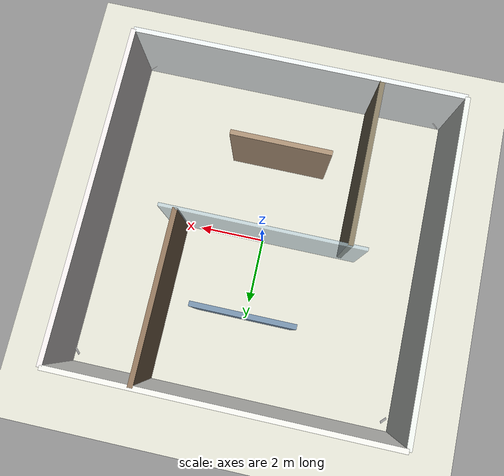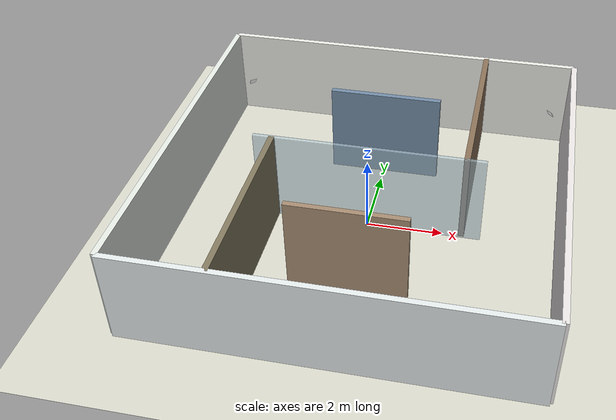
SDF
<?xml version="1.0"?>
<sdf version="1.7">
  <world name="office_corridor_world">

    <!-- Physics settings -->
    <physics name="default_physics" type="ode">
      <max_step_size>0.001</max_step_size>
      <real_time_factor>1.0</real_time_factor>
      <real_time_update_rate>1000</real_time_update_rate>
    </physics>

    <!-- Essential Gazebo Plugins -->
    <plugin filename="gz-sim-physics-system" name="gz::sim::systems::Physics"></plugin>
    <plugin filename="gz-sim-sensors-system" name="gz::sim::systems::Sensors">
      <render_engine>ogre2</render_engine>
    </plugin>
    <plugin filename="gz-sim-scene-broadcaster-system" name="gz::sim::systems::SceneBroadcaster"></plugin>
    <plugin filename="gz-sim-user-commands-system" name="gz::sim::systems::UserCommands"></plugin>

    <!-- Scene settings - office environment -->
    <scene>
      <ambient>0.7 0.7 0.7 1.0</ambient>
      <background>0.5 0.5 0.6 1.0</background>
      <shadows>true</shadows>
    </scene>

    <!-- Office lighting - softer and diffused -->
    <light type="directional" name="sun">
      <cast_shadows>true</cast_shadows>
      <pose>2 2 12 0 0 0</pose>
      <diffuse>0.85 0.85 0.9 1</diffuse>
      <specular>0.25 0.25 0.25 1</specular>
      <direction>-0.2 -0.2 -0.95</direction>
    </light>

    <!-- Additional ambient ceiling lights -->
    <light type="point" name="ceiling_light_1">
      <pose>3 2 2.8 0 0 0</pose>
      <diffuse>0.8 0.8 0.75 1</diffuse>
      <specular>0.15 0.15 0.15 1</specular>
      <attenuation>
        <range>12</range>
        <linear>0.08</linear>
        <quadratic>0.005</quadratic>
      </attenuation>
    </light>

    <light type="point" name="ceiling_light_2">
      <pose>-3 -2 2.8 0 0 0</pose>
      <diffuse>0.8 0.8 0.75 1</diffuse>
      <specular>0.15 0.15 0.15 1</specular>
      <attenuation>
        <range>12</range>
        <linear>0.08</linear>
        <quadratic>0.005</quadratic>
      </attenuation>
    </light>

    <!-- Ground Plane - polished tile -->
    <model name="ground_plane">
      <static>true</static>
      <link name="link">
        <collision name="collision">
          <geometry>
            <plane>
              <normal>0 0 1</normal>
              <size>100 100</size>
            </plane>
          </geometry>
        </collision>
        <visual name="visual">
          <geometry>
            <plane>
              <normal>0 0 1</normal>
              <size>100 100</size>
            </plane>
          </geometry>
          <material>
            <ambient>0.75 0.75 0.7 1</ambient>
            <diffuse>0.85 0.85 0.8 1</diffuse>
            <specular>0.4 0.4 0.4 1</specular>
            <pbr>
              <metal>
                <roughness>0.3</roughness>
                <metalness>0.3</metalness>
              </metal>
            </pbr>
          </material>
        </visual>
      </link>
    </model>

    <!-- Office Corridor Layout: T-shaped with rooms -->

    <!-- Main corridor walls - painted drywall -->
    <model name="corridor_north">
      <static>true</static>
      <pose>0 5 1.25 0 0 0</pose>
      <link name="link">
        <collision name="collision">
          <geometry>
            <box>
              <size>10 0.15 2.5</size>
            </box>
          </geometry>
        </collision>
        <visual name="visual">
          <geometry>
            <box>
              <size>10 0.15 2.5</size>
            </box>
          </geometry>
          <material>
            <ambient>0.88 0.88 0.85 1</ambient>
            <diffuse>0.92 0.92 0.9 1</diffuse>
            <specular>0.12 0.12 0.12 1</specular>
            <pbr>
              <metal>
                <roughness>0.88</roughness>
                <metalness>0.05</metalness>
              </metal>
            </pbr>
          </material>
        </visual>
      </link>
    </model>

    <model name="corridor_south">
      <static>true</static>
      <pose>0 -5 1.25 0 0 0</pose>
      <link name="link">
        <collision name="collision">
          <geometry>
            <box>
              <size>10 0.15 2.5</size>
            </box>
          </geometry>
        </collision>
        <visual name="visual">
          <geometry>
            <box>
              <size>10 0.15 2.5</size>
            </box>
          </geometry>
          <material>
            <ambient>0.85 0.88 0.88 1</ambient>
            <diffuse>0.9 0.92 0.92 1</diffuse>
            <specular>0.12 0.12 0.12 1</specular>
            <pbr>
              <metal>
                <roughness>0.88</roughness>
                <metalness>0.05</metalness>
              </metal>
            </pbr>
          </material>
        </visual>
      </link>
    </model>

    <model name="corridor_east">
      <static>true</static>
      <pose>5 0 1.25 0 0 0</pose>
      <link name="link">
        <collision name="collision">
          <geometry>
            <box>
              <size>0.15 10 2.5</size>
            </box>
          </geometry>
        </collision>
        <visual name="visual">
          <geometry>
            <box>
              <size>0.15 10 2.5</size>
            </box>
          </geometry>
          <material>
            <ambient>0.88 0.85 0.85 1</ambient>
            <diffuse>0.92 0.9 0.9 1</diffuse>
            <specular>0.12 0.12 0.12 1</specular>
            <pbr>
              <metal>
                <roughness>0.88</roughness>
                <metalness>0.05</metalness>
              </metal>
            </pbr>
          </material>
        </visual>
      </link>
    </model>

    <model name="corridor_west">
      <static>true</static>
      <pose>-5 0 1.25 0 0 0</pose>
      <link name="link">
        <collision name="collision">
          <geometry>
            <box>
              <size>0.15 10 2.5</size>
            </box>
          </geometry>
        </collision>
        <visual name="visual">
          <geometry>
            <box>
              <size>0.15 10 2.5</size>
            </box>
          </geometry>
          <material>
            <ambient>0.85 0.88 0.85 1</ambient>
            <diffuse>0.9 0.92 0.9 1</diffuse>
            <specular>0.12 0.12 0.12 1</specular>
            <pbr>
              <metal>
                <roughness>0.88</roughness>
                <metalness>0.05</metalness>
              </metal>
            </pbr>
          </material>
        </visual>
      </link>
    </model>

    <!-- Room dividers - wood paneling -->
    <model name="divider_room_1">
      <static>true</static>
      <pose>2.5 2.5 1.25 0 0 0</pose>
      <link name="link">
        <collision name="collision">
          <geometry>
            <box>
              <size>0.15 5 2.5</size>
            </box>
          </geometry>
        </collision>
        <visual name="visual">
          <geometry>
            <box>
              <size>0.15 5 2.5</size>
            </box>
          </geometry>
          <material>
            <ambient>0.45 0.35 0.25 1</ambient>
            <diffuse>0.55 0.45 0.35 1</diffuse>
            <specular>0.18 0.15 0.12 1</specular>
            <pbr>
              <metal>
                <roughness>0.75</roughness>
                <metalness>0.1</metalness>
              </metal>
            </pbr>
          </material>
        </visual>
      </link>
    </model>

    <model name="divider_room_2">
      <static>true</static>
      <pose>-2.5 -2.5 1.25 0 0 0</pose>
      <link name="link">
        <collision name="collision">
          <geometry>
            <box>
              <size>0.15 5 2.5</size>
            </box>
          </geometry>
        </collision>
        <visual name="visual">
          <geometry>
            <box>
              <size>0.15 5 2.5</size>
            </box>
          </geometry>
          <material>
            <ambient>0.42 0.38 0.28 1</ambient>
            <diffuse>0.52 0.48 0.38 1</diffuse>
            <specular>0.17 0.15 0.13 1</specular>
            <pbr>
              <metal>
                <roughness>0.76</roughness>
                <metalness>0.09</metalness>
              </metal>
            </pbr>
          </material>
        </visual>
      </link>
    </model>

    <!-- Cross-corridor divider - glass-like -->
    <model name="glass_divider">
      <static>true</static>
      <pose>0 0 1.25 0 0 1.5708</pose>
      <link name="link">
        <collision name="collision">
          <geometry>
            <box>
              <size>0.1 6 2.5</size>
            </box>
          </geometry>
        </collision>
        <visual name="visual">
          <geometry>
            <box>
              <size>0.1 6 2.5</size>
            </box>
          </geometry>
          <material>
            <ambient>0.6 0.7 0.75 0.6</ambient>
            <diffuse>0.7 0.8 0.85 0.6</diffuse>
            <specular>0.8 0.8 0.8 1</specular>
            <pbr>
              <metal>
                <roughness>0.15</roughness>
                <metalness>0.7</metalness>
              </metal>
            </pbr>
          </material>
        </visual>
      </link>
    </model>

    <!-- Accent walls with different textures -->
    <model name="accent_wall_1">
      <static>true</static>
      <pose>0 2.5 1.25 0 0 1.5708</pose>
      <link name="link">
        <collision name="collision">
          <geometry>
            <box>
              <size>0.15 3 2.5</size>
            </box>
          </geometry>
        </collision>
        <visual name="visual">
          <geometry>
            <box>
              <size>0.15 3 2.5</size>
            </box>
          </geometry>
          <material>
            <ambient>0.35 0.45 0.55 1</ambient>
            <diffuse>0.45 0.55 0.65 1</diffuse>
            <specular>0.2 0.2 0.25 1</specular>
            <pbr>
              <metal>
                <roughness>0.7</roughness>
                <metalness>0.15</metalness>
              </metal>
            </pbr>
          </material>
        </visual>
      </link>
    </model>

    <model name="accent_wall_2">
      <static>true</static>
      <pose>0 -2.5 1.25 0 0 1.5708</pose>
      <link name="link">
        <collision name="collision">
          <geometry>
            <box>
              <size>0.15 3 2.5</size>
            </box>
          </geometry>
        </collision>
        <visual name="visual">
          <geometry>
            <box>
              <size>0.15 3 2.5</size>
            </box>
          </geometry>
          <material>
            <ambient>0.55 0.45 0.35 1</ambient>
            <diffuse>0.65 0.55 0.45 1</diffuse>
            <specular>0.18 0.15 0.12 1</specular>
            <pbr>
              <metal>
                <roughness>0.72</roughness>
                <metalness>0.12</metalness>
              </metal>
            </pbr>
          </material>
        </visual>
      </link>
    </model>

    <!-- WhyCode Markers -->
    <include>
      <uri>model://whycode_0</uri>
      <name>marker_0</name>
      <pose>4.5 4.5 1.2 0 0 -2.356</pose>
    </include>

    <include>
      <uri>model://whycode_1</uri>
      <name>marker_1</name>
      <pose>-4.5 4.5 1.2 0 0 2.356</pose>
    </include>

    <include>
      <uri>model://whycode_2</uri>
      <name>marker_2</name>
      <pose>-4.5 -4.5 1.2 0 0 0.785</pose>
    </include>

    <include>
      <uri>model://whycode_3</uri>
      <name>marker_3</name>
      <pose>4.5 -4.5 1.2 0 0 -0.785</pose>
    </include>

  </world>
</sdf>

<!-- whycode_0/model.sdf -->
<sdf version="1.7">
  <model name="WhyCode_0">
    <static>true</static>
    <link name="link">
      <pose>0 0 0 0 2.0944 0</pose>
      <collision name="collision">
        <geometry>
          <box>
            <size>0.2 0.2 0.01</size>
          </box>
        </geometry>
      </collision>
      <visual name="visual">
        <geometry>
          <box>
            <size>0.2 0.2 0.01</size>
          </box>
        </geometry>
        <material>
          <ambient>1 1 1 1</ambient>
          <diffuse>1 1 1 1</diffuse>
          <specular>0 0 0 1</specular>
          <pbr>
            <metal>
              <albedo_map>model://whycode_0/materials/textures/whycode_1.png</albedo_map>
              <roughness>0.5</roughness>
              <metalness>0.0</metalness>
            </metal>
          </pbr>
          <!-- Fallback for Ogre 1.x -->
          <script>
            <uri>model://whycode_0/materials/scripts</uri>
            <uri>model://whycode_0/materials/textures</uri>
            <name>WhyCode_0/Marker</name>
          </script>
        </material>
      </visual>
    </link>
  </model>
</sdf>

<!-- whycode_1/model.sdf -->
<sdf version="1.7">
  <model name="WhyCode_1">
    <static>true</static>
    <link name="link">
      <pose>0 0 0 0 -2.0944 0</pose>
      <collision name="collision">
        <geometry>
          <box>
            <size>0.2 0.2 0.01</size>
          </box>
        </geometry>
      </collision>
      <visual name="visual">
        <geometry>
          <box>
            <size>0.2 0.2 0.01</size>
          </box>
        </geometry>
        <material>
          <ambient>1 1 1 1</ambient>
          <diffuse>1 1 1 1</diffuse>
          <specular>0 0 0 1</specular>
          <pbr>
            <metal>
              <albedo_map>model://whycode_1/materials/textures/whycode_2.png</albedo_map>
              <roughness>0.5</roughness>
              <metalness>0.0</metalness>
            </metal>
          </pbr>
          <!-- Fallback for Ogre 1.x -->
          <script>
            <uri>model://whycode_1/materials/scripts</uri>
            <uri>model://whycode_1/materials/textures</uri>
            <name>WhyCode_1/Marker</name>
          </script>
        </material>
      </visual>
    </link>
  </model>
</sdf>

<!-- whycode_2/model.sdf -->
<sdf version="1.7">
  <model name="WhyCode_2">
    <static>true</static>
    <link name="link">
      <pose>0 0 0 0 2.0944 0</pose>
      <collision name="collision">
        <geometry>
          <box>
            <size>0.2 0.2 0.01</size>
          </box>
        </geometry>
      </collision>
      <visual name="visual">
        <geometry>
          <box>
            <size>0.2 0.2 0.01</size>
          </box>
        </geometry>
        <material>
          <ambient>1 1 1 1</ambient>
          <diffuse>1 1 1 1</diffuse>
          <specular>0 0 0 1</specular>
          <pbr>
            <metal>
              <albedo_map>model://whycode_2/materials/textures/whycode_3.png</albedo_map>
              <roughness>0.5</roughness>
              <metalness>0.0</metalness>
            </metal>
          </pbr>
          <!-- Fallback for Ogre 1.x -->
          <script>
            <uri>model://whycode_2/materials/scripts</uri>
            <uri>model://whycode_2/materials/textures</uri>
            <name>WhyCode_2/Marker</name>
          </script>
        </material>
      </visual>
    </link>
  </model>
</sdf>

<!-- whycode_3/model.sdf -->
<sdf version="1.7">
  <model name="WhyCode_3">
    <static>true</static>
    <link name="link">
      <pose>0 0 0 0 -2.0944 0</pose>
      <collision name="collision">
        <geometry>
          <box>
            <size>0.2 0.2 0.01</size>
          </box>
        </geometry>
      </collision>
      <visual name="visual">
        <geometry>
          <box>
            <size>0.2 0.2 0.01</size>
          </box>
        </geometry>
        <material>
          <ambient>1 1 1 1</ambient>
          <diffuse>1 1 1 1</diffuse>
          <specular>0 0 0 1</specular>
          <pbr>
            <metal>
              <albedo_map>model://whycode_3/materials/textures/whycode_4.png</albedo_map>
              <roughness>0.5</roughness>
              <metalness>0.0</metalness>
            </metal>
          </pbr>
          <!-- Fallback for Ogre 1.x -->
          <script>
            <uri>model://whycode_3/materials/scripts</uri>
            <uri>model://whycode_3/materials/textures</uri>
            <name>WhyCode_3/Marker</name>
          </script>
        </material>
      </visual>
    </link>
  </model>
</sdf>
